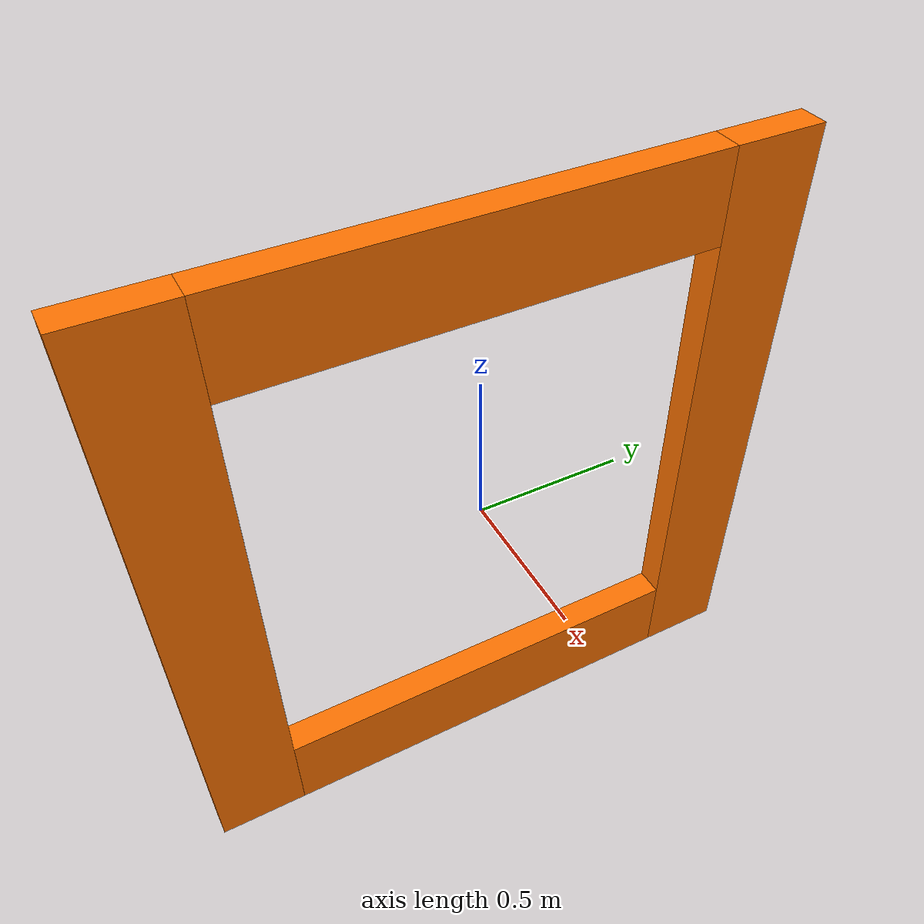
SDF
<?xml version="1.0"?>
<!-- 정사각 레이싱 게이트. 내부 1.5 m, 외부 2.1 m (프레임 폭 0.30 m), 두께 0.1 m.
     원점 = 개구부 중심, +x = 통과 방향(법선). static 이라 공중에 고정된다(다리 없음).
     치수는 adr_bringup/config/gates.yaml 의 gate: 항목과 일치해야 한다. -->
<sdf version="1.9">
  <model name="adr_gate">
    <static>true</static>
    <link name="left">
      <pose>0 0.9 0 0 0 0</pose>
      <visual name="left_visual">
        <geometry><box><size>0.1 0.30000000000000004 2.1</size></box></geometry>
        <material>
          <ambient>1.0 0.45 0.0 1</ambient>
          <diffuse>1.0 0.45 0.0 1</diffuse>
          <specular>0.2 0.2 0.2 1</specular>
        </material>
      </visual>
      <collision name="left_collision">
        <geometry><box><size>0.1 0.30000000000000004 2.1</size></box></geometry>
      </collision>
    </link>
    <link name="right">
      <pose>0 -0.9 0 0 0 0</pose>
      <visual name="right_visual">
        <geometry><box><size>0.1 0.30000000000000004 2.1</size></box></geometry>
        <material>
          <ambient>1.0 0.45 0.0 1</ambient>
          <diffuse>1.0 0.45 0.0 1</diffuse>
          <specular>0.2 0.2 0.2 1</specular>
        </material>
      </visual>
      <collision name="right_collision">
        <geometry><box><size>0.1 0.30000000000000004 2.1</size></box></geometry>
      </collision>
    </link>
    <link name="top">
      <pose>0 0 0.9 0 0 0</pose>
      <visual name="top_visual">
        <geometry><box><size>0.1 1.5 0.30000000000000004</size></box></geometry>
        <material>
          <ambient>1.0 0.45 0.0 1</ambient>
          <diffuse>1.0 0.45 0.0 1</diffuse>
          <specular>0.2 0.2 0.2 1</specular>
        </material>
      </visual>
      <collision name="top_collision">
        <geometry><box><size>0.1 1.5 0.30000000000000004</size></box></geometry>
      </collision>
    </link>
    <link name="bottom">
      <pose>0 0 -0.9 0 0 0</pose>
      <visual name="bottom_visual">
        <geometry><box><size>0.1 1.5 0.30000000000000004</size></box></geometry>
        <material>
          <ambient>1.0 0.45 0.0 1</ambient>
          <diffuse>1.0 0.45 0.0 1</diffuse>
          <specular>0.2 0.2 0.2 1</specular>
        </material>
      </visual>
      <collision name="bottom_collision">
        <geometry><box><size>0.1 1.5 0.30000000000000004</size></box></geometry>
      </collision>
    </link>
  </model>
</sdf>
